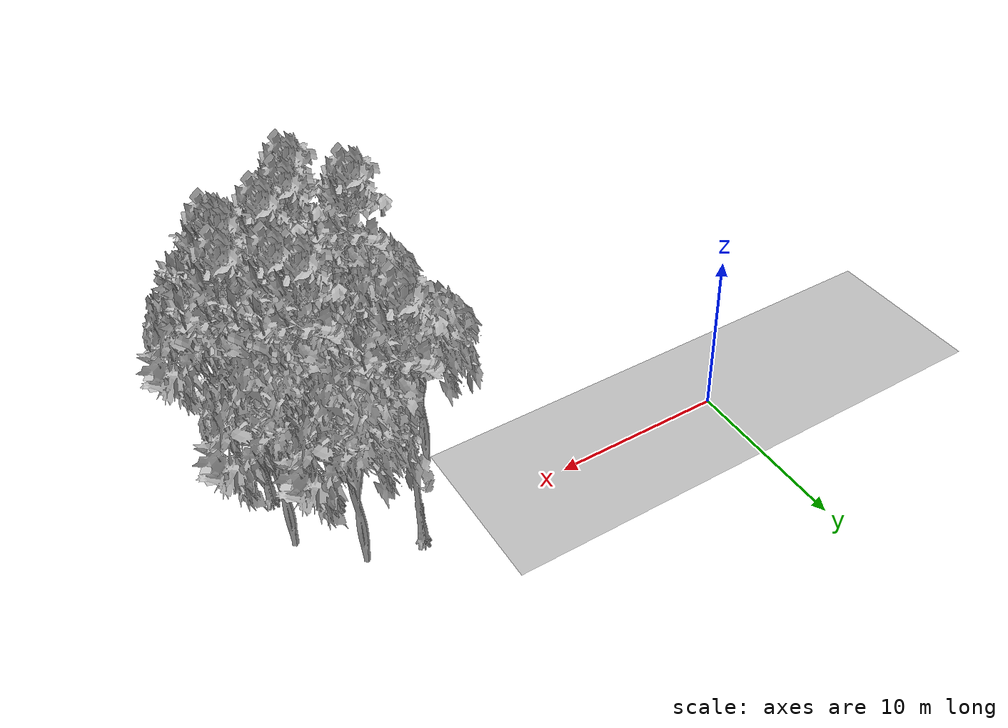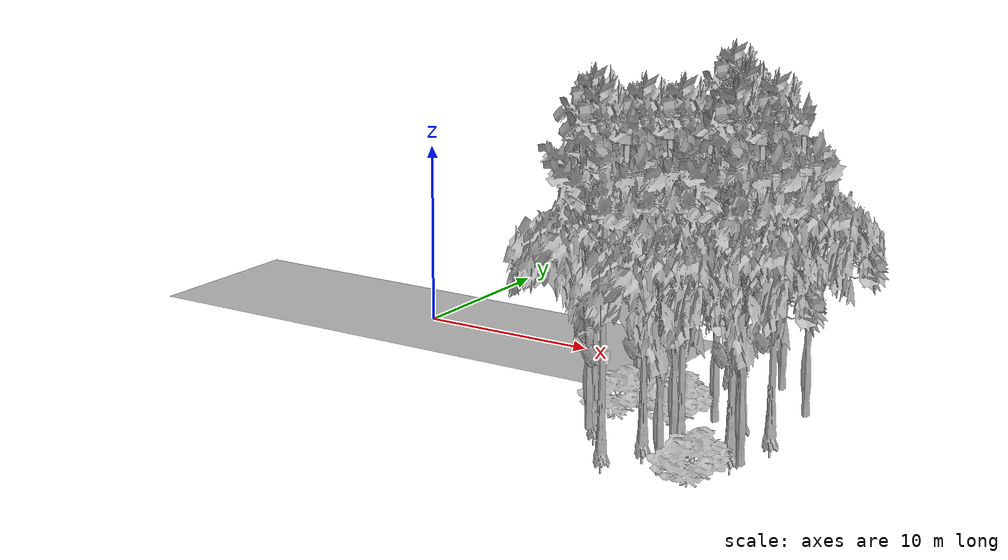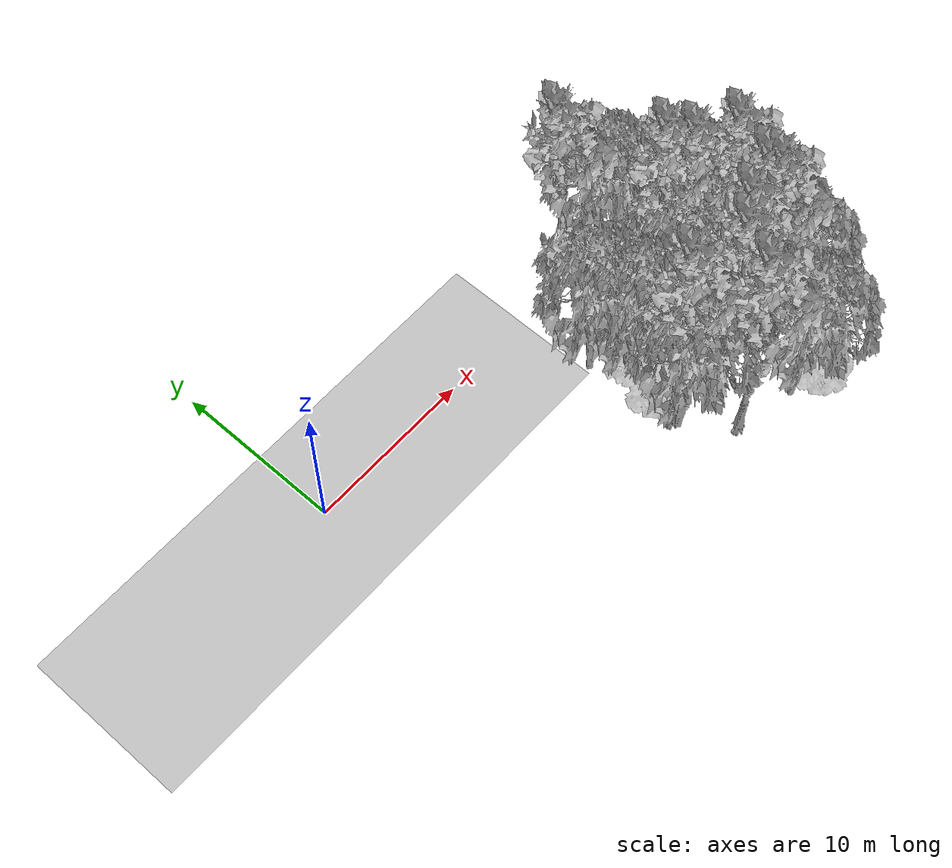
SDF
<sdf version="1.7">
 <world name="default">
  <model name="ground_plane">
   <static>1</static>
   <link name="link">
    <collision name="collision">
     <pose>-50 0 0 0 -0 0</pose>
     <geometry><plane><normal>0 0 1</normal><size>100 100</size></plane></geometry>
     <surface><contact><ode><min_depth>0.01</min_depth><max_vel>0</max_vel></ode></contact></surface>
    </collision>
    <visual name="grass">
     <cast_shadows>0</cast_shadows>
     <geometry>
      <mesh>
       <scale>0.5814285714285714 0.18142857142857144 0.1</scale>
       <uri>file://grass_plane/meshes/grass_plane.dae</uri>
      </mesh>
     </geometry>
    </visual>
   </link>
  </model>
  <model name="Tree 43">
   <static>1</static>
   <pose>21.651645164604446 -0.27466853605179686 0 1.57079 -0 0</pose>
   <link name="link">
    <collision name="collision">
     <geometry><mesh><scale>3.5 5 3.5</scale><uri>model://tree_2/meshes/tree_2.obj</uri></mesh></geometry>
    </collision>
    <visual name="visual">
     <geometry><mesh><scale>3.5 5 3.5</scale><uri>model://tree_2/meshes/tree_2.obj</uri></mesh></geometry>
    </visual>
   </link>
  </model>
  <model name="Tree 65">
   <static>1</static>
   <pose>16.61158132229818 -8.170287521224468 0 1.57079 -0 0</pose>
   <link name="link">
    <collision name="collision">
     <geometry><mesh><scale>4 2.5 4</scale><uri>model://tree_1/meshes/tree_1.obj</uri></mesh></geometry>
    </collision>
    <visual name="visual">
     <geometry><mesh><scale>4 2.5 4</scale><uri>model://tree_1/meshes/tree_1.obj</uri></mesh></geometry>
    </visual>
   </link>
  </model>
  <model name="Tree 69">
   <static>1</static>
   <pose>23.37305034663798 -9.252555463551698 0 1.57079 -0 0</pose>
   <link name="link">
    <collision name="collision">
     <geometry><mesh><scale>3.5 5 3.5</scale><uri>model://tree_9/meshes/tree_9.obj</uri></mesh></geometry>
    </collision>
    <visual name="visual">
     <geometry><mesh><scale>3.5 5 3.5</scale><uri>model://tree_9/meshes/tree_9.obj</uri></mesh></geometry>
    </visual>
   </link>
  </model>
  <model name="Tree 72">
   <static>1</static>
   <pose>22.196723169556805 -5.764996042859282 0 1.57079 -0 0</pose>
   <link name="link">
    <collision name="collision">
     <geometry><mesh><scale>3.5 5 3.5</scale><uri>model://tree_9/meshes/tree_9.obj</uri></mesh></geometry>
    </collision>
    <visual name="visual">
     <geometry><mesh><scale>3.5 5 3.5</scale><uri>model://tree_9/meshes/tree_9.obj</uri></mesh></geometry>
    </visual>
   </link>
  </model>
  <model name="Tree 76">
   <static>1</static>
   <pose>21.954512408264662 -13.834138249437407 0 1.57079 -0 0</pose>
   <link name="link">
    <collision name="collision">
     <geometry><mesh><scale>3.5 5 3.5</scale><uri>model://tree_2/meshes/tree_2.obj</uri></mesh></geometry>
    </collision>
    <visual name="visual">
     <geometry><mesh><scale>3.5 5 3.5</scale><uri>model://tree_2/meshes/tree_2.obj</uri></mesh></geometry>
    </visual>
   </link>
  </model>
  <model name="Tree 113">
   <static>1</static>
   <pose>21.114942426367165 -10.004792530964126 0 1.57079 -0 0</pose>
   <link name="link">
    <collision name="collision">
     <geometry><mesh><scale>3.5 5 3.5</scale><uri>model://tree_9/meshes/tree_9.obj</uri></mesh></geometry>
    </collision>
    <visual name="visual">
     <geometry><mesh><scale>3.5 5 3.5</scale><uri>model://tree_9/meshes/tree_9.obj</uri></mesh></geometry>
    </visual>
   </link>
  </model>
  <model name="Tree 121">
   <static>1</static>
   <pose>19.48769881832456 -7.520414759375629 0 1.57079 -0 0</pose>
   <link name="link">
    <collision name="collision">
     <geometry><mesh><scale>4 2.5 4</scale><uri>model://tree_1/meshes/tree_1.obj</uri></mesh></geometry>
    </collision>
    <visual name="visual">
     <geometry><mesh><scale>4 2.5 4</scale><uri>model://tree_1/meshes/tree_1.obj</uri></mesh></geometry>
    </visual>
   </link>
  </model>
  <model name="Tree 127">
   <static>1</static>
   <pose>16.33268290484567 -10.507440536341779 0 1.57079 -0 0</pose>
   <link name="link">
    <collision name="collision">
     <geometry><mesh><scale>3.5 5 3.5</scale><uri>model://tree_2/meshes/tree_2.obj</uri></mesh></geometry>
    </collision>
    <visual name="visual">
     <geometry><mesh><scale>3.5 5 3.5</scale><uri>model://tree_2/meshes/tree_2.obj</uri></mesh></geometry>
    </visual>
   </link>
  </model>
  <model name="Tree 130">
   <static>1</static>
   <pose>21.459554466323112 -4.584574645488166 0 1.57079 -0 0</pose>
   <link name="link">
    <collision name="collision">
     <geometry><mesh><scale>3.5 5 3.5</scale><uri>model://tree_9/meshes/tree_9.obj</uri></mesh></geometry>
    </collision>
    <visual name="visual">
     <geometry><mesh><scale>3.5 5 3.5</scale><uri>model://tree_9/meshes/tree_9.obj</uri></mesh></geometry>
    </visual>
   </link>
  </model>
  <model name="Tree 147">
   <static>1</static>
   <pose>20.733523170901947 -10.180845290302592 0 1.57079 -0 0</pose>
   <link name="link">
    <collision name="collision">
     <geometry><mesh><scale>3.5 5 3.5</scale><uri>model://tree_2/meshes/tree_2.obj</uri></mesh></geometry>
    </collision>
    <visual name="visual">
     <geometry><mesh><scale>3.5 5 3.5</scale><uri>model://tree_2/meshes/tree_2.obj</uri></mesh></geometry>
    </visual>
   </link>
  </model>
  <model name="Tree 177">
   <static>1</static>
   <pose>15.938307087296465 -4.639483353089375 0 1.57079 -0 0</pose>
   <link name="link">
    <collision name="collision">
     <geometry><mesh><scale>3.5 5 3.5</scale><uri>model://tree_2/meshes/tree_2.obj</uri></mesh></geometry>
    </collision>
    <visual name="visual">
     <geometry><mesh><scale>3.5 5 3.5</scale><uri>model://tree_2/meshes/tree_2.obj</uri></mesh></geometry>
    </visual>
   </link>
  </model>
  <model name="Tree 189">
   <static>1</static>
   <pose>24.525317211321678 -10.842759497907803 0 1.57079 -0 0</pose>
   <link name="link">
    <collision name="collision">
     <geometry><mesh><scale>3.5 5 3.5</scale><uri>model://tree_2/meshes/tree_2.obj</uri></mesh></geometry>
    </collision>
    <visual name="visual">
     <geometry><mesh><scale>3.5 5 3.5</scale><uri>model://tree_2/meshes/tree_2.obj</uri></mesh></geometry>
    </visual>
   </link>
  </model>
  <model name="Tree 218">
   <static>1</static>
   <pose>16.82593050565461 -6.520768326568046 0 1.57079 -0 0</pose>
   <link name="link">
    <collision name="collision">
     <geometry><mesh><scale>3.5 5 3.5</scale><uri>model://tree_2/meshes/tree_2.obj</uri></mesh></geometry>
    </collision>
    <visual name="visual">
     <geometry><mesh><scale>3.5 5 3.5</scale><uri>model://tree_2/meshes/tree_2.obj</uri></mesh></geometry>
    </visual>
   </link>
  </model>
  <model name="Tree 276">
   <static>1</static>
   <pose>23.61040872720359 -13.916511789688897 0 1.57079 -0 0</pose>
   <link name="link">
    <collision name="collision">
     <geometry><mesh><scale>4 2.5 4</scale><uri>model://tree_1/meshes/tree_1.obj</uri></mesh></geometry>
    </collision>
    <visual name="visual">
     <geometry><mesh><scale>4 2.5 4</scale><uri>model://tree_1/meshes/tree_1.obj</uri></mesh></geometry>
    </visual>
   </link>
  </model>
  <model name="Tree 279">
   <static>1</static>
   <pose>18.307019055652574 -6.465102249947742 0 1.57079 -0 0</pose>
   <link name="link">
    <collision name="collision">
     <geometry><mesh><scale>4 2.5 4</scale><uri>model://tree_1/meshes/tree_1.obj</uri></mesh></geometry>
    </collision>
    <visual name="visual">
     <geometry><mesh><scale>4 2.5 4</scale><uri>model://tree_1/meshes/tree_1.obj</uri></mesh></geometry>
    </visual>
   </link>
  </model>
  <model name="Tree 283">
   <static>1</static>
   <pose>19.623303462869075 -10.92446043171512 0 1.57079 -0 0</pose>
   <link name="link">
    <collision name="collision">
     <geometry><mesh><scale>3.5 5 3.5</scale><uri>model://tree_9/meshes/tree_9.obj</uri></mesh></geometry>
    </collision>
    <visual name="visual">
     <geometry><mesh><scale>3.5 5 3.5</scale><uri>model://tree_9/meshes/tree_9.obj</uri></mesh></geometry>
    </visual>
   </link>
  </model>
  <model name="Tree 294">
   <static>1</static>
   <pose>18.575221556827017 -12.976814694924196 0 1.57079 -0 0</pose>
   <link name="link">
    <collision name="collision">
     <geometry><mesh><scale>3.5 5 3.5</scale><uri>model://tree_9/meshes/tree_9.obj</uri></mesh></geometry>
    </collision>
    <visual name="visual">
     <geometry><mesh><scale>3.5 5 3.5</scale><uri>model://tree_9/meshes/tree_9.obj</uri></mesh></geometry>
    </visual>
   </link>
  </model>
  <model name="Tree 350">
   <static>1</static>
   <pose>16.480547943877596 -10.053495167302643 0 1.57079 -0 0</pose>
   <link name="link">
    <collision name="collision">
     <geometry><mesh><scale>3.5 5 3.5</scale><uri>model://tree_9/meshes/tree_9.obj</uri></mesh></geometry>
    </collision>
    <visual name="visual">
     <geometry><mesh><scale>3.5 5 3.5</scale><uri>model://tree_9/meshes/tree_9.obj</uri></mesh></geometry>
    </visual>
   </link>
  </model>
  <model name="Tree 365">
   <static>1</static>
   <pose>18.699003760749704 0.019067578518738415 0 1.57079 -0 0</pose>
   <link name="link">
    <collision name="collision">
     <geometry><mesh><scale>3.5 5 3.5</scale><uri>model://tree_9/meshes/tree_9.obj</uri></mesh></geometry>
    </collision>
    <visual name="visual">
     <geometry><mesh><scale>3.5 5 3.5</scale><uri>model://tree_9/meshes/tree_9.obj</uri></mesh></geometry>
    </visual>
   </link>
  </model>
  <model name="Tree 436">
   <static>1</static>
   <pose>20.941592589467575 -6.349738371843378 0 1.57079 -0 0</pose>
   <link name="link">
    <collision name="collision">
     <geometry><mesh><scale>3.5 5 3.5</scale><uri>model://tree_2/meshes/tree_2.obj</uri></mesh></geometry>
    </collision>
    <visual name="visual">
     <geometry><mesh><scale>3.5 5 3.5</scale><uri>model://tree_2/meshes/tree_2.obj</uri></mesh></geometry>
    </visual>
   </link>
  </model>
  <model name="Tree 464">
   <static>1</static>
   <pose>24.247686369052047 -6.877683409363309 0 1.57079 -0 0</pose>
   <link name="link">
    <collision name="collision">
     <geometry><mesh><scale>3.5 5 3.5</scale><uri>model://tree_9/meshes/tree_9.obj</uri></mesh></geometry>
    </collision>
    <visual name="visual">
     <geometry><mesh><scale>3.5 5 3.5</scale><uri>model://tree_9/meshes/tree_9.obj</uri></mesh></geometry>
    </visual>
   </link>
  </model>
  <model name="Tree 532">
   <static>1</static>
   <pose>23.62982772557406 -9.870965367503619 0 1.57079 -0 0</pose>
   <link name="link">
    <collision name="collision">
     <geometry><mesh><scale>3.5 5 3.5</scale><uri>model://tree_9/meshes/tree_9.obj</uri></mesh></geometry>
    </collision>
    <visual name="visual">
     <geometry><mesh><scale>3.5 5 3.5</scale><uri>model://tree_9/meshes/tree_9.obj</uri></mesh></geometry>
    </visual>
   </link>
  </model>
  <model name="Tree 537">
   <static>1</static>
   <pose>24.29733581048562 -3.242366778965602 0 1.57079 -0 0</pose>
   <link name="link">
    <collision name="collision">
     <geometry><mesh><scale>3.5 5 3.5</scale><uri>model://tree_2/meshes/tree_2.obj</uri></mesh></geometry>
    </collision>
    <visual name="visual">
     <geometry><mesh><scale>3.5 5 3.5</scale><uri>model://tree_2/meshes/tree_2.obj</uri></mesh></geometry>
    </visual>
   </link>
  </model>
 </world>
</sdf>
